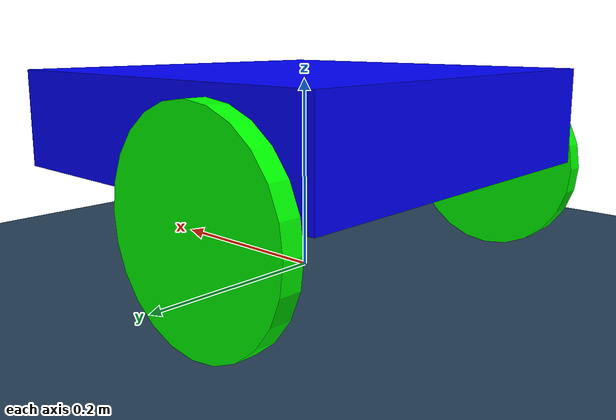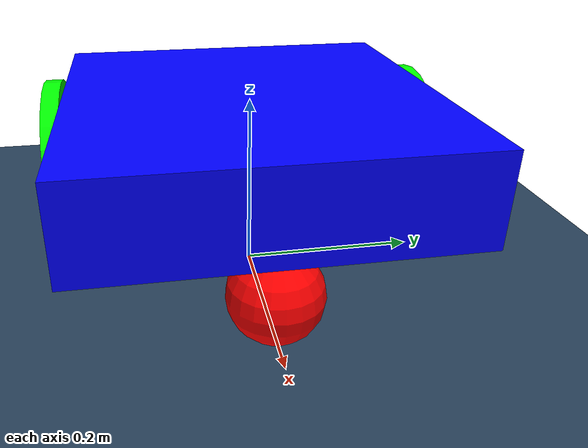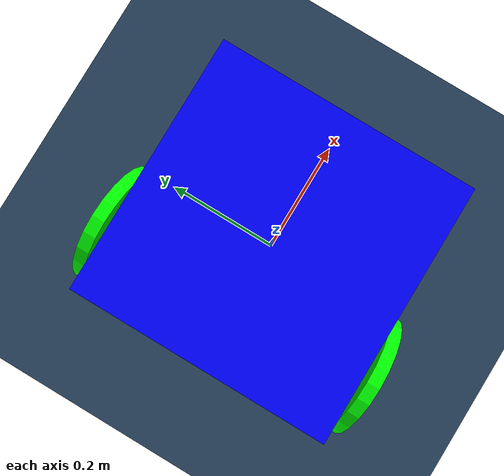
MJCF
<mujoco model="Wheel">
    <include file="./shared.xml"></include>

    <worldbody>
        <body name="wheel" pos="0 0 0.11" childclass="body">
            <freejoint name="root" />
            <geom name="body" type="box" fromto="0 0 0 0 0 0.1" size="0.2" rgba="0.0 0.0 1.0 1.0" />
            <camera name="body" pos="-1 0 0.5" xyaxes="0 -1 0 1 0 2" mode="trackcom" />
            <body name="caster" pos="0.15 0 -0.06">
                <geom name="caster" type="sphere" size="0.05" rgba="1.0 0.0 0.0 1.0" />
                <joint name="caster" type="ball" />
            </body>
            <body name="left_wheel" pos="-0.1 0.21 -0.01">
                <geom name="left_wheel" type="cylinder" fromto="0 0 0 0 0.02 0" size="0.1"
                    friction="3.0" rgba="0.0 1.0 0.0 1.0" />
                <joint name="left_wheel" type="hinge" axis="0 1 0" />
            </body>
            <body name="right_wheel" pos="-0.1 -0.21 -0.01">
                <geom name="right_wheel" type="cylinder" fromto="0 0 0 0 -0.02 0" size="0.1"
                    friction="3.0" rgba="0.0 1.0 0.0 1.0" />
                <joint name="right_wheel" type="hinge" axis="0 1 0" />
            </body>
        </body>
    </worldbody>

    <actuator>
        <motor name="left_wheel" joint="left_wheel" gear="5" />
        <motor name="right_wheel" joint="right_wheel" gear="5" />
    </actuator>
</mujoco>

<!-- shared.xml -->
<mujoco>
    <option timestep="0.005" />

    <asset>
        <texture type="skybox" builtin="gradient" rgb1=".3 .5 .7" rgb2="0 0 0" width="512"
            height="512" />
        <texture name="body" type="cube" builtin="flat" mark="cross" width="127" height="1278"
            rgb1="0.8 0.6 0.4" rgb2="0.8 0.6 0.4" markrgb="1 1 1" random="0.01" />
        <material name="body" texture="body" texuniform="true" rgba="0.8 0.6 .4 1" />
        <texture name="grid" type="2d" builtin="checker" width="512" height="512" rgb1=".1 .2 .3"
            rgb2=".2 .3 .4" />
        <material name="grid" texture="grid" texrepeat="1 1" texuniform="true" reflectance=".2" />
    </asset>

    <default>
        <motor ctrlrange="-1 1" ctrllimited="true" />
        <default class="body">
            <geom condim="1" friction=".7" solimp=".9 .99 .003" solref=".015 1" material="body" />
            <joint damping=".02" stiffness=".1" armature=".01" solimplimit="0 .99 .01" />
        </default>
    </default>

    <visual>
        <map force="0.1" zfar="30" />
        <rgba haze="0.15 0.25 0.35 1" />
        <quality shadowsize="4096" />
        <global offwidth="800" offheight="800" />
    </visual>

    <worldbody>
        <geom name="floor" size="0 0 .05" type="plane" material="grid" condim="3" />
        <light name="worldlight" directional="true" ambient="0.2 0.2 0.2" diffuse="0.8 0.8 0.8"
            specular="0.3 0.3 0.3" castshadow="false" pos="0 0 4" dir="0 0 -90"></light>
    </worldbody>
</mujoco>
